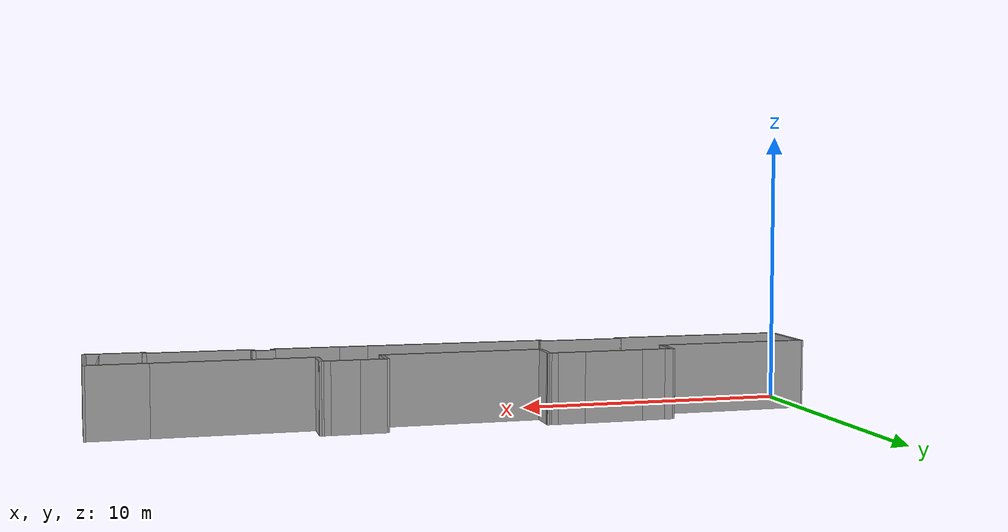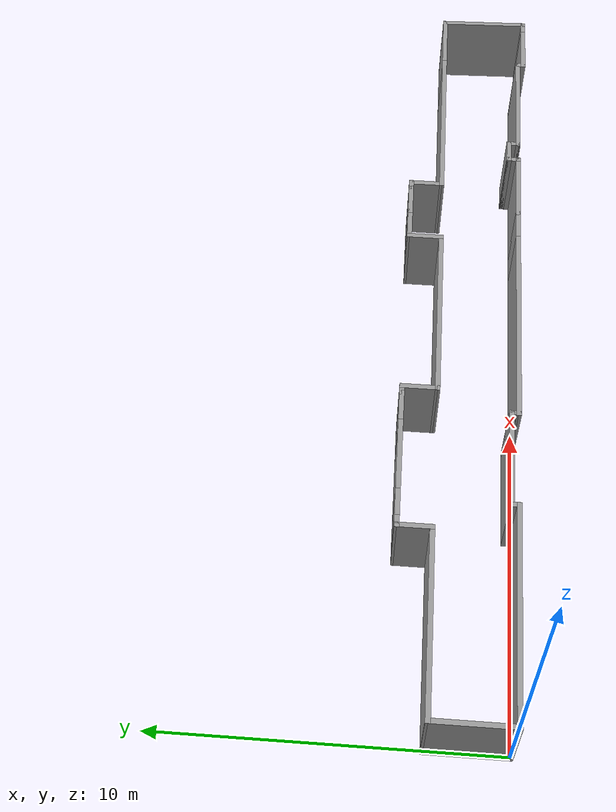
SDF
<?xml version='1.0'?>
<sdf version='1.7'>
  <model name='piso4'>
    <static>true</static>
    <link name='Muro_O01'>
      <collision name='Muro_O01_Collision'>
        <geometry><box><size>6.4900 0.15 2.5</size></box></geometry>
        <pose>0 0 1.25 0 -0 0</pose>
      </collision>
      <visual name='Muro_O01_Visual'>
        <pose>0 0 1.25 0 -0 0</pose>
        <geometry><box><size>6.4900 0.15 2.5</size></box></geometry>
        <material>
          <script>
            <uri>file://media/materials/scripts/gazebo.material</uri>
            <name>Gazebo/Grey</name>
          </script>
          <ambient>1 1 1 1</ambient>
        </material>
      </visual>
      <pose>3.1700 0.0000 0 0 -0 0.0000</pose>
    </link>
    <link name='Muro_O02'>
      <collision name='Muro_O02_Collision'>
        <geometry><box><size>0.3500 0.15 2.5</size></box></geometry>
        <pose>0 0 1.25 0 -0 0</pose>
      </collision>
      <visual name='Muro_O02_Visual'>
        <pose>0 0 1.25 0 -0 0</pose>
        <geometry><box><size>0.3500 0.15 2.5</size></box></geometry>
        <material>
          <script>
            <uri>file://media/materials/scripts/gazebo.material</uri>
            <name>Gazebo/Grey</name>
          </script>
          <ambient>1 1 1 1</ambient>
        </material>
      </visual>
      <pose>6.3400 0.1000 0 0 -0 1.5708</pose>
    </link>
    <link name='Muro_O03'>
      <collision name='Muro_O03_Collision'>
        <geometry><box><size>3.1500 0.15 2.5</size></box></geometry>
        <pose>0 0 1.25 0 -0 0</pose>
      </collision>
      <visual name='Muro_O03_Visual'>
        <pose>0 0 1.25 0 -0 0</pose>
        <geometry><box><size>3.1500 0.15 2.5</size></box></geometry>
        <material>
          <script>
            <uri>file://media/materials/scripts/gazebo.material</uri>
            <name>Gazebo/Grey</name>
          </script>
          <ambient>1 1 1 1</ambient>
        </material>
      </visual>
      <pose>7.8400 0.2000 0 0 -0 0.0000</pose>
    </link>
    <link name='Muro_O04'>
      <collision name='Muro_O04_Collision'>
        <geometry><box><size>0.3500 0.15 2.5</size></box></geometry>
        <pose>0 0 1.25 0 -0 0</pose>
      </collision>
      <visual name='Muro_O04_Visual'>
        <pose>0 0 1.25 0 -0 0</pose>
        <geometry><box><size>0.3500 0.15 2.5</size></box></geometry>
        <material>
          <script>
            <uri>file://media/materials/scripts/gazebo.material</uri>
            <name>Gazebo/Grey</name>
          </script>
          <ambient>1 1 1 1</ambient>
        </material>
      </visual>
      <pose>9.3400 0.1000 0 0 -0 -1.5708</pose>
    </link>
    <link name='Muro_O05'>
      <collision name='Muro_O05_Collision'>
        <geometry><box><size>6.6800 0.15 2.5</size></box></geometry>
        <pose>0 0 1.25 0 -0 0</pose>
      </collision>
      <visual name='Muro_O05_Visual'>
        <pose>0 0 1.25 0 -0 0</pose>
        <geometry><box><size>6.6800 0.15 2.5</size></box></geometry>
        <material>
          <script>
            <uri>file://media/materials/scripts/gazebo.material</uri>
            <name>Gazebo/Grey</name>
          </script>
          <ambient>1 1 1 1</ambient>
        </material>
      </visual>
      <pose>12.6050 0.0000 0 0 -0 0.0000</pose>
    </link>
    <link name='Muro_O06'>
      <collision name='Muro_O06_Collision'>
        <geometry><box><size>1.1800 0.15 2.5</size></box></geometry>
        <pose>0 0 1.25 0 -0 0</pose>
      </collision>
      <visual name='Muro_O06_Visual'>
        <pose>0 0 1.25 0 -0 0</pose>
        <geometry><box><size>1.1800 0.15 2.5</size></box></geometry>
        <material>
          <script>
            <uri>file://media/materials/scripts/gazebo.material</uri>
            <name>Gazebo/Grey</name>
          </script>
          <ambient>1 1 1 1</ambient>
        </material>
      </visual>
      <pose>16.3850 0.0000 0 0 -0 0.0000</pose>
    </link>
    <link name='Muro_O07'>
      <collision name='Muro_O07_Collision'>
        <geometry><box><size>2.4400 0.15 2.5</size></box></geometry>
        <pose>0 0 1.25 0 -0 0</pose>
      </collision>
      <visual name='Muro_O07_Visual'>
        <pose>0 0 1.25 0 -0 0</pose>
        <geometry><box><size>2.4400 0.15 2.5</size></box></geometry>
        <material>
          <script>
            <uri>file://media/materials/scripts/gazebo.material</uri>
            <name>Gazebo/Grey</name>
          </script>
          <ambient>1 1 1 1</ambient>
        </material>
      </visual>
      <pose>18.0450 0.0000 0 0 -0 0.0000</pose>
    </link>
    <link name='Muro_O08'>
      <collision name='Muro_O08_Collision'>
        <geometry><box><size>0.4500 0.15 2.5</size></box></geometry>
        <pose>0 0 1.25 0 -0 0</pose>
      </collision>
      <visual name='Muro_O08_Visual'>
        <pose>0 0 1.25 0 -0 0</pose>
        <geometry><box><size>0.4500 0.15 2.5</size></box></geometry>
        <material>
          <script>
            <uri>file://media/materials/scripts/gazebo.material</uri>
            <name>Gazebo/Grey</name>
          </script>
          <ambient>1 1 1 1</ambient>
        </material>
      </visual>
      <pose>19.1900 0.1500 0 0 -0 1.5708</pose>
    </link>
    <link name='Muro_O09'>
      <collision name='Muro_O09_Collision'>
        <geometry><box><size>0.8450 0.15 2.5</size></box></geometry>
        <pose>0 0 1.25 0 -0 0</pose>
      </collision>
      <visual name='Muro_O09_Visual'>
        <pose>0 0 1.25 0 -0 0</pose>
        <geometry><box><size>0.8450 0.15 2.5</size></box></geometry>
        <material>
          <script>
            <uri>file://media/materials/scripts/gazebo.material</uri>
            <name>Gazebo/Grey</name>
          </script>
          <ambient>1 1 1 1</ambient>
        </material>
      </visual>
      <pose>19.5375 0.3000 0 0 -0 0.0000</pose>
    </link>
    <link name='Muro_O10'>
      <collision name='Muro_O10_Collision'>
        <geometry><box><size>0.4500 0.15 2.5</size></box></geometry>
        <pose>0 0 1.25 0 -0 0</pose>
      </collision>
      <visual name='Muro_O10_Visual'>
        <pose>0 0 1.25 0 -0 0</pose>
        <geometry><box><size>0.4500 0.15 2.5</size></box></geometry>
        <material>
          <script>
            <uri>file://media/materials/scripts/gazebo.material</uri>
            <name>Gazebo/Grey</name>
          </script>
          <ambient>1 1 1 1</ambient>
        </material>
      </visual>
      <pose>19.8850 0.1500 0 0 -0 -1.5708</pose>
    </link>
    <link name='Muro_O11'>
      <collision name='Muro_O11_Collision'>
        <geometry><box><size>3.8600 0.15 2.5</size></box></geometry>
        <pose>0 0 1.25 0 -0 0</pose>
      </collision>
      <visual name='Muro_O11_Visual'>
        <pose>0 0 1.25 0 -0 0</pose>
        <geometry><box><size>3.8600 0.15 2.5</size></box></geometry>
        <material>
          <script>
            <uri>file://media/materials/scripts/gazebo.material</uri>
            <name>Gazebo/Grey</name>
          </script>
          <ambient>1 1 1 1</ambient>
        </material>
      </visual>
      <pose>21.7400 0.0000 0 0 -0 0.0000</pose>
    </link>
    <link name='Muro_O12'>
      <collision name='Muro_O12_Collision'>
        <geometry><box><size>0.3350 0.15 2.5</size></box></geometry>
        <pose>0 0 1.25 0 -0 0</pose>
      </collision>
      <visual name='Muro_O12_Visual'>
        <pose>0 0 1.25 0 -0 0</pose>
        <geometry><box><size>0.3350 0.15 2.5</size></box></geometry>
        <material>
          <script>
            <uri>file://media/materials/scripts/gazebo.material</uri>
            <name>Gazebo/Grey</name>
          </script>
          <ambient>1 1 1 1</ambient>
        </material>
      </visual>
      <pose>23.5950 -0.0925 0 0 -0 -1.5708</pose>
    </link>
    <link name='Muro_O13'>
      <collision name='Muro_O13_Collision'>
        <geometry><box><size>1.7300 0.15 2.5</size></box></geometry>
        <pose>0 0 1.25 0 -0 0</pose>
      </collision>
      <visual name='Muro_O13_Visual'>
        <pose>0 0 1.25 0 -0 0</pose>
        <geometry><box><size>1.7300 0.15 2.5</size></box></geometry>
        <material>
          <script>
            <uri>file://media/materials/scripts/gazebo.material</uri>
            <name>Gazebo/Grey</name>
          </script>
          <ambient>1 1 1 1</ambient>
        </material>
      </visual>
      <pose>24.3850 -0.1850 0 0 -0 0.0000</pose>
    </link>
    <link name='Muro_O14'>
      <collision name='Muro_O14_Collision'>
        <geometry><box><size>0.5900 0.15 2.5</size></box></geometry>
        <pose>0 0 1.25 0 -0 0</pose>
      </collision>
      <visual name='Muro_O14_Visual'>
        <pose>0 0 1.25 0 -0 0</pose>
        <geometry><box><size>0.5900 0.15 2.5</size></box></geometry>
        <material>
          <script>
            <uri>file://media/materials/scripts/gazebo.material</uri>
            <name>Gazebo/Grey</name>
          </script>
          <ambient>1 1 1 1</ambient>
        </material>
      </visual>
      <pose>25.3950 -0.1850 0 0 -0 0.0000</pose>
    </link>
    <link name='Muro_E01'>
      <collision name='Muro_E01_Collision'>
        <geometry><box><size>5.6303 0.15 2.5</size></box></geometry>
        <pose>0 0 1.25 0 -0 0</pose>
      </collision>
      <visual name='Muro_E01_Visual'>
        <pose>0 0 1.25 0 -0 0</pose>
        <geometry><box><size>5.6303 0.15 2.5</size></box></geometry>
        <material>
          <script>
            <uri>file://media/materials/scripts/gazebo.material</uri>
            <name>Gazebo/Grey</name>
          </script>
          <ambient>1 1 1 1</ambient>
        </material>
      </visual>
      <pose>2.7400 2.3778 0 0 -0 0.0101</pose>
    </link>
    <link name='Muro_E02'>
      <collision name='Muro_E02_Collision'>
        <geometry><box><size>1.1440 0.15 2.5</size></box></geometry>
        <pose>0 0 1.25 0 -0 0</pose>
      </collision>
      <visual name='Muro_E02_Visual'>
        <pose>0 0 1.25 0 -0 0</pose>
        <geometry><box><size>1.1440 0.15 2.5</size></box></geometry>
        <material>
          <script>
            <uri>file://media/materials/scripts/gazebo.material</uri>
            <name>Gazebo/Grey</name>
          </script>
          <ambient>1 1 1 1</ambient>
        </material>
      </visual>
      <pose>5.4800 2.9026 0 0 -0 1.5708</pose>
    </link>
    <link name='Muro_E03'>
      <collision name='Muro_E03_Collision'>
        <geometry><box><size>0.3750 0.15 2.5</size></box></geometry>
        <pose>0 0 1.25 0 -0 0</pose>
      </collision>
      <visual name='Muro_E03_Visual'>
        <pose>0 0 1.25 0 -0 0</pose>
        <geometry><box><size>0.3750 0.15 2.5</size></box></geometry>
        <material>
          <script>
            <uri>file://media/materials/scripts/gazebo.material</uri>
            <name>Gazebo/Grey</name>
          </script>
          <ambient>1 1 1 1</ambient>
        </material>
      </visual>
      <pose>5.5925 3.4008 0 0 -0 0.0101</pose>
    </link>
    <link name='Muro_E04'>
      <collision name='Muro_E04_Collision'>
        <geometry><box><size>1.1401 0.15 2.5</size></box></geometry>
        <pose>0 0 1.25 0 -0 0</pose>
      </collision>
      <visual name='Muro_E04_Visual'>
        <pose>0 0 1.25 0 -0 0</pose>
        <geometry><box><size>1.1401 0.15 2.5</size></box></geometry>
        <material>
          <script>
            <uri>file://media/materials/scripts/gazebo.material</uri>
            <name>Gazebo/Grey</name>
          </script>
          <ambient>1 1 1 1</ambient>
        </material>
      </visual>
      <pose>6.2000 3.4069 0 0 -0 0.0101</pose>
    </link>
    <link name='Muro_E05'>
      <collision name='Muro_E05_Collision'>
        <geometry><box><size>2.2701 0.15 2.5</size></box></geometry>
        <pose>0 0 1.25 0 -0 0</pose>
      </collision>
      <visual name='Muro_E05_Visual'>
        <pose>0 0 1.25 0 -0 0</pose>
        <geometry><box><size>2.2701 0.15 2.5</size></box></geometry>
        <material>
          <script>
            <uri>file://media/materials/scripts/gazebo.material</uri>
            <name>Gazebo/Grey</name>
          </script>
          <ambient>1 1 1 1</ambient>
        </material>
      </visual>
      <pose>7.7550 3.4227 0 0 -0 0.0101</pose>
    </link>
    <link name='Muro_E06'>
      <collision name='Muro_E06_Collision'>
        <geometry><box><size>1.1401 0.15 2.5</size></box></geometry>
        <pose>0 0 1.25 0 -0 0</pose>
      </collision>
      <visual name='Muro_E06_Visual'>
        <pose>0 0 1.25 0 -0 0</pose>
        <geometry><box><size>1.1401 0.15 2.5</size></box></geometry>
        <material>
          <script>
            <uri>file://media/materials/scripts/gazebo.material</uri>
            <name>Gazebo/Grey</name>
          </script>
          <ambient>1 1 1 1</ambient>
        </material>
      </visual>
      <pose>9.3100 3.4385 0 0 -0 0.0101</pose>
    </link>
    <link name='Muro_E07'>
      <collision name='Muro_E07_Collision'>
        <geometry><box><size>0.3850 0.15 2.5</size></box></geometry>
        <pose>0 0 1.25 0 -0 0</pose>
      </collision>
      <visual name='Muro_E07_Visual'>
        <pose>0 0 1.25 0 -0 0</pose>
        <geometry><box><size>0.3850 0.15 2.5</size></box></geometry>
        <material>
          <script>
            <uri>file://media/materials/scripts/gazebo.material</uri>
            <name>Gazebo/Grey</name>
          </script>
          <ambient>1 1 1 1</ambient>
        </material>
      </visual>
      <pose>9.9225 3.4447 0 0 -0 0.0101</pose>
    </link>
    <link name='Muro_E08'>
      <collision name='Muro_E08_Collision'>
        <geometry><box><size>1.2000 0.15 2.5</size></box></geometry>
        <pose>0 0 1.25 0 -0 0</pose>
      </collision>
      <visual name='Muro_E08_Visual'>
        <pose>0 0 1.25 0 -0 0</pose>
        <geometry><box><size>1.2000 0.15 2.5</size></box></geometry>
        <material>
          <script>
            <uri>file://media/materials/scripts/gazebo.material</uri>
            <name>Gazebo/Grey</name>
          </script>
          <ambient>1 1 1 1</ambient>
        </material>
      </visual>
      <pose>10.0400 2.9209 0 0 -0 -1.5708</pose>
    </link>
    <link name='Muro_E09'>
      <collision name='Muro_E09_Collision'>
        <geometry><box><size>5.8403 0.15 2.5</size></box></geometry>
        <pose>0 0 1.25 0 -0 0</pose>
      </collision>
      <visual name='Muro_E09_Visual'>
        <pose>0 0 1.25 0 -0 0</pose>
        <geometry><box><size>5.8403 0.15 2.5</size></box></geometry>
        <material>
          <script>
            <uri>file://media/materials/scripts/gazebo.material</uri>
            <name>Gazebo/Grey</name>
          </script>
          <ambient>1 1 1 1</ambient>
        </material>
      </visual>
      <pose>12.8850 2.4248 0 0 -0 0.0101</pose>
    </link>
    <link name='Muro_E10'>
      <collision name='Muro_E10_Collision'>
        <geometry><box><size>1.1600 0.15 2.5</size></box></geometry>
        <pose>0 0 1.25 0 -0 0</pose>
      </collision>
      <visual name='Muro_E10_Visual'>
        <pose>0 0 1.25 0 -0 0</pose>
        <geometry><box><size>1.1600 0.15 2.5</size></box></geometry>
        <material>
          <script>
            <uri>file://media/materials/scripts/gazebo.material</uri>
            <name>Gazebo/Grey</name>
          </script>
          <ambient>1 1 1 1</ambient>
        </material>
      </visual>
      <pose>15.7300 2.9587 0 0 -0 1.5708</pose>
    </link>
    <link name='Muro_E11'>
      <collision name='Muro_E11_Collision'>
        <geometry><box><size>1.1451 0.15 2.5</size></box></geometry>
        <pose>0 0 1.25 0 -0 0</pose>
      </collision>
      <visual name='Muro_E11_Visual'>
        <pose>0 0 1.25 0 -0 0</pose>
        <geometry><box><size>1.1451 0.15 2.5</size></box></geometry>
        <material>
          <script>
            <uri>file://media/materials/scripts/gazebo.material</uri>
            <name>Gazebo/Grey</name>
          </script>
          <ambient>1 1 1 1</ambient>
        </material>
      </visual>
      <pose>16.2275 3.4687 0 0 -0 0.0101</pose>
    </link>
    <link name='Muro_E12'>
      <collision name='Muro_E12_Collision'>
        <geometry><box><size>1.1401 0.15 2.5</size></box></geometry>
        <pose>0 0 1.25 0 -0 0</pose>
      </collision>
      <visual name='Muro_E12_Visual'>
        <pose>0 0 1.25 0 -0 0</pose>
        <geometry><box><size>1.1401 0.15 2.5</size></box></geometry>
        <material>
          <script>
            <uri>file://media/materials/scripts/gazebo.material</uri>
            <name>Gazebo/Grey</name>
          </script>
          <ambient>1 1 1 1</ambient>
        </material>
      </visual>
      <pose>17.2200 3.4788 0 0 -0 0.0101</pose>
    </link>
    <link name='Muro_E13'>
      <collision name='Muro_E13_Collision'>
        <geometry><box><size>0.3840 0.15 2.5</size></box></geometry>
        <pose>0 0 1.25 0 -0 0</pose>
      </collision>
      <visual name='Muro_E13_Visual'>
        <pose>0 0 1.25 0 -0 0</pose>
        <geometry><box><size>0.3840 0.15 2.5</size></box></geometry>
        <material>
          <script>
            <uri>file://media/materials/scripts/gazebo.material</uri>
            <name>Gazebo/Grey</name>
          </script>
          <ambient>1 1 1 1</ambient>
        </material>
      </visual>
      <pose>17.8320 3.4850 0 0 -0 0.0101</pose>
    </link>
    <link name='Muro_E14'>
      <collision name='Muro_E14_Collision'>
        <geometry><box><size>1.1400 0.15 2.5</size></box></geometry>
        <pose>0 0 1.25 0 -0 0</pose>
      </collision>
      <visual name='Muro_E14_Visual'>
        <pose>0 0 1.25 0 -0 0</pose>
        <geometry><box><size>1.1400 0.15 2.5</size></box></geometry>
        <material>
          <script>
            <uri>file://media/materials/scripts/gazebo.material</uri>
            <name>Gazebo/Grey</name>
          </script>
          <ambient>1 1 1 1</ambient>
        </material>
      </visual>
      <pose>17.9490 2.9912 0 0 -0 -1.5708</pose>
    </link>
    <link name='Muro_E15'>
      <collision name='Muro_E15_Collision'>
        <geometry><box><size>5.7503 0.15 2.5</size></box></geometry>
        <pose>0 0 1.25 0 -0 0</pose>
      </collision>
      <visual name='Muro_E15_Visual'>
        <pose>0 0 1.25 0 -0 0</pose>
        <geometry><box><size>5.7503 0.15 2.5</size></box></geometry>
        <material>
          <script>
            <uri>file://media/materials/scripts/gazebo.material</uri>
            <name>Gazebo/Grey</name>
          </script>
          <ambient>1 1 1 1</ambient>
        </material>
      </visual>
      <pose>20.7490 2.5246 0 0 -0 0.0101</pose>
    </link>
    <link name='Muro_E16'>
      <collision name='Muro_E16_Collision'>
        <geometry><box><size>2.1351 0.15 2.5</size></box></geometry>
        <pose>0 0 1.25 0 -0 0</pose>
      </collision>
      <visual name='Muro_E16_Visual'>
        <pose>0 0 1.25 0 -0 0</pose>
        <geometry><box><size>2.1351 0.15 2.5</size></box></geometry>
        <material>
          <script>
            <uri>file://media/materials/scripts/gazebo.material</uri>
            <name>Gazebo/Grey</name>
          </script>
          <ambient>1 1 1 1</ambient>
        </material>
      </visual>
      <pose>24.5415 2.5631 0 0 -0 0.0101</pose>
    </link>
    <link name='Lamina_ascensor'>
      <collision name='Lamina_ascensor_Collision'>
        <geometry><box><size>1.1800 0.15 2.5</size></box></geometry>
        <pose>0 0 1.25 0 -0 0</pose>
      </collision>
      <visual name='Lamina_ascensor_Visual'>
        <pose>0 0 1.25 0 -0 0</pose>
        <geometry><box><size>1.1800 0.15 2.5</size></box></geometry>
        <material>
          <script>
            <uri>file://media/materials/scripts/gazebo.material</uri>
            <name>Gazebo/Grey</name>
          </script>
          <ambient>1 1 1 1</ambient>
        </material>
      </visual>
      <pose>16.3850 0.0000 0 0 -0 0.0000</pose>
    </link>
    <link name='Lamina_escalera'>
      <collision name='Lamina_escalera_Collision'>
        <geometry><box><size>1.7300 0.15 2.5</size></box></geometry>
        <pose>0 0 1.25 0 -0 0</pose>
      </collision>
      <visual name='Lamina_escalera_Visual'>
        <pose>0 0 1.25 0 -0 0</pose>
        <geometry><box><size>1.7300 0.15 2.5</size></box></geometry>
        <material>
          <script>
            <uri>file://media/materials/scripts/gazebo.material</uri>
            <name>Gazebo/Grey</name>
          </script>
          <ambient>1 1 1 1</ambient>
        </material>
      </visual>
      <pose>24.3850 -0.1850 0 0 -0 0.0000</pose>
    </link>
    <link name='Muro_Norte'>
      <collision name='Muro_Norte_Collision'>
        <geometry><box><size>2.5000 0.15 2.5</size></box></geometry>
        <pose>0 0 1.25 0 -0 0</pose>
      </collision>
      <visual name='Muro_Norte_Visual'>
        <pose>0 0 1.25 0 -0 0</pose>
        <geometry><box><size>2.5000 0.15 2.5</size></box></geometry>
        <material>
          <script>
            <uri>file://media/materials/scripts/gazebo.material</uri>
            <name>Gazebo/Grey</name>
          </script>
          <ambient>1 1 1 1</ambient>
        </material>
      </visual>
      <pose>0.0000 1.1750 0 0 -0 1.5708</pose>
    </link>
    <link name='Muro_Sur'>
      <collision name='Muro_Sur_Collision'>
        <geometry><box><size>2.9094 0.15 2.5</size></box></geometry>
        <pose>0 0 1.25 0 -0 0</pose>
      </collision>
      <visual name='Muro_Sur_Visual'>
        <pose>0 0 1.25 0 -0 0</pose>
        <geometry><box><size>2.9094 0.15 2.5</size></box></geometry>
        <material>
          <script>
            <uri>file://media/materials/scripts/gazebo.material</uri>
            <name>Gazebo/Grey</name>
          </script>
          <ambient>1 1 1 1</ambient>
        </material>
      </visual>
      <pose>25.5745 1.1941 0 0 -0 1.6002</pose>
    </link>
  </model>
</sdf>
